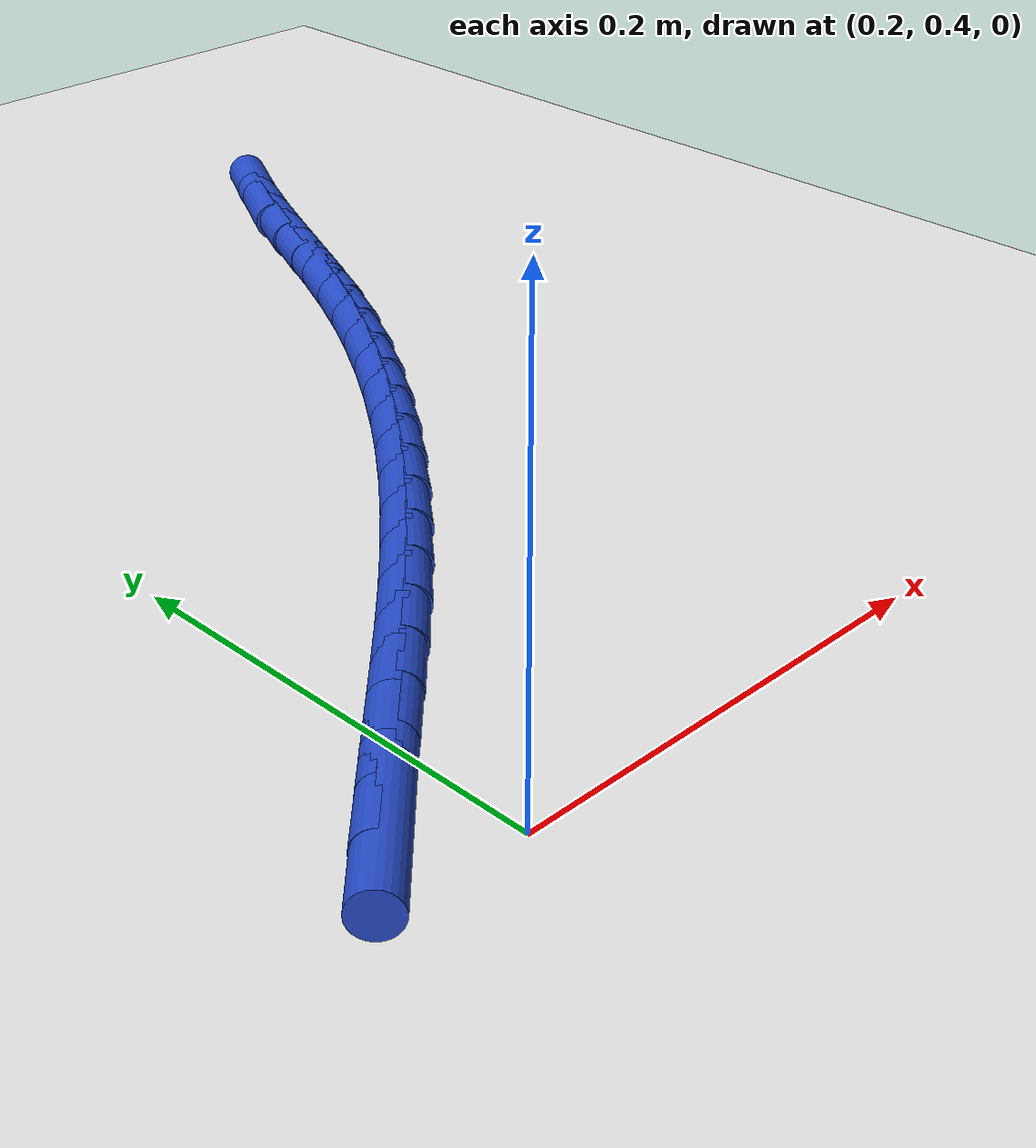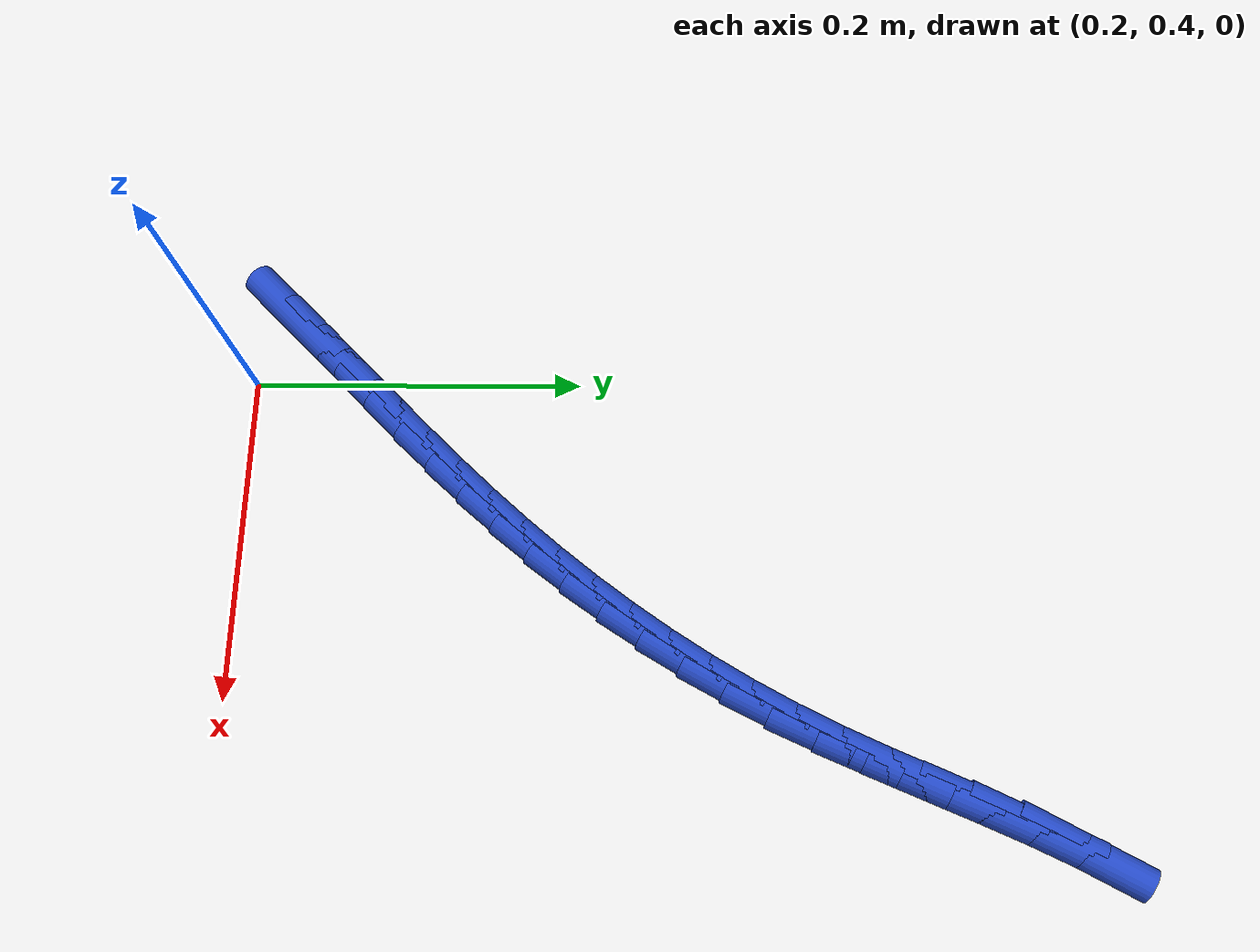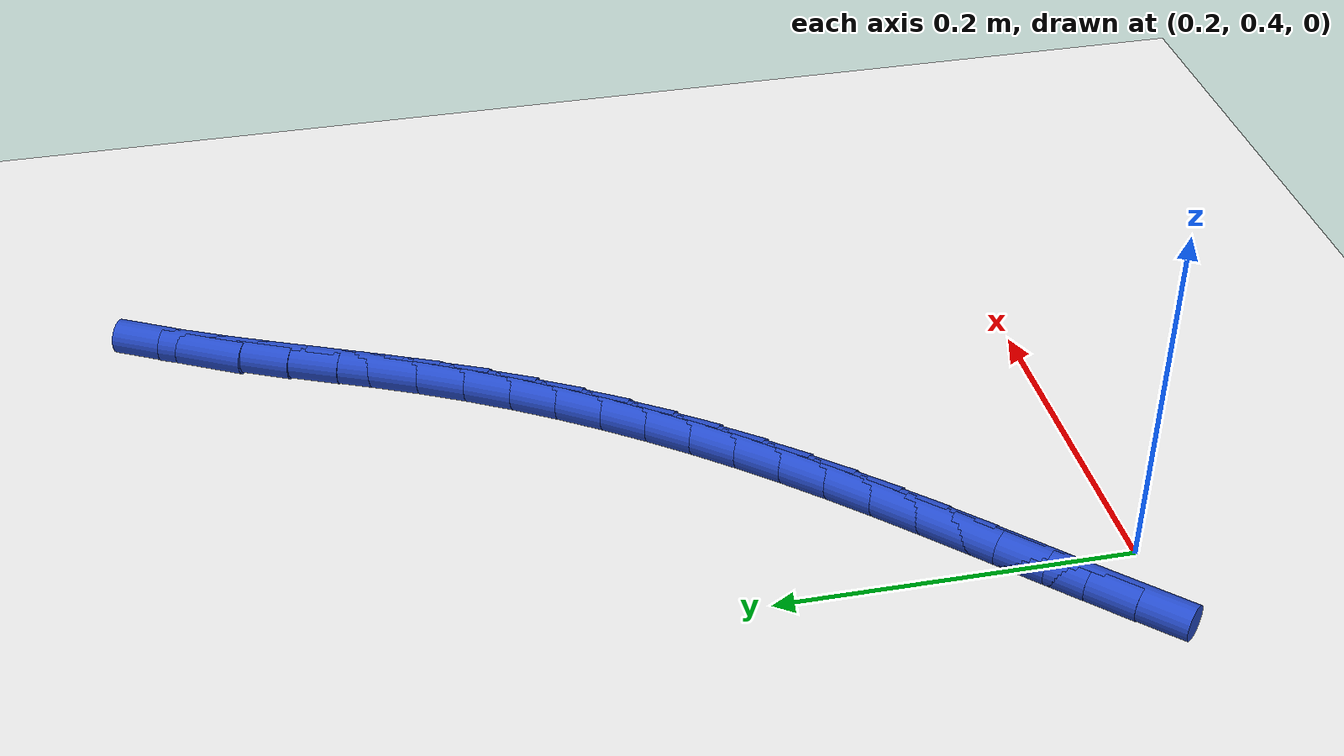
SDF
<sdf version="1.6">
 <world name="default">
  <model name="ground_plane">
   <static>1</static>
   <link name="link">
    <collision name="collision">
     <geometry><plane><normal>0 0 1</normal><size>100 100</size></plane></geometry>
     <surface><friction><ode><mu>100</mu><mu2>50</mu2></ode></friction></surface>
    </collision>
    <visual name="visual">
     <cast_shadows>0</cast_shadows>
     <geometry><plane><normal>0 0 1</normal><size>100 100</size></plane></geometry>
     <material>
      <script><uri>file://media/materials/scripts/gazebo.material</uri><name>Gazebo/WhiteGlow</name></script>
     </material>
    </visual>
   </link>
  </model>
  <model name="line">
   <link name="link_17">
    <pose>0.1601264760004584 0.42505557691806156 0.01 0 1.57 0.785718321556414</pose>
    <collision name="collision">
     <geometry><cylinder><radius>0.01</radius><length>0.08</length></cylinder></geometry>
    </collision>
    <visual name="visual">
     <material>
      <script><name>Gazebo/Blue</name><uri>file://media/materials/scripts/gazebo.material</uri></script>
     </material>
     <geometry><cylinder><radius>0.01</radius><length>0.08</length></cylinder></geometry>
    </visual>
   </link>
   <link name="link_18">
    <pose>0.18024281124892788 0.4451847971099076 0.01 0 1.57 0.776462563861803</pose>
    <collision name="collision">
     <geometry><cylinder><radius>0.01</radius><length>0.08</length></cylinder></geometry>
    </collision>
    <visual name="visual">
     <material>
      <script><name>Gazebo/Blue</name><uri>file://media/materials/scripts/gazebo.material</uri></script>
     </material>
     <geometry><cylinder><radius>0.01</radius><length>0.08</length></cylinder></geometry>
    </visual>
   </link>
   <link name="link_19">
    <pose>0.2005851403022812 0.46516679453999044 0.01 0 1.57 0.7743677885194766</pose>
    <collision name="collision">
     <geometry><cylinder><radius>0.01</radius><length>0.08</length></cylinder></geometry>
    </collision>
    <visual name="visual">
     <material>
      <script><name>Gazebo/Blue</name><uri>file://media/materials/scripts/gazebo.material</uri></script>
     </material>
     <geometry><cylinder><radius>0.01</radius><length>0.08</length></cylinder></geometry>
    </visual>
   </link>
   <link name="link_20">
    <pose>0.22095603560710458 0.4850931777285172 0.01 0 1.57 0.7794313464376725</pose>
    <collision name="collision">
     <geometry><cylinder><radius>0.01</radius><length>0.08</length></cylinder></geometry>
    </collision>
    <visual name="visual">
     <material>
      <script><name>Gazebo/Blue</name><uri>file://media/materials/scripts/gazebo.material</uri></script>
     </material>
     <geometry><cylinder><radius>0.01</radius><length>0.08</length></cylinder></geometry>
    </visual>
   </link>
   <link name="link_21">
    <pose>0.24115806960998415 0.5050555551956948 0.01 0 1.57 0.7917657792579809</pose>
    <collision name="collision">
     <geometry><cylinder><radius>0.01</radius><length>0.08</length></cylinder></geometry>
    </collision>
    <visual name="visual">
     <material>
      <script><name>Gazebo/Blue</name><uri>file://media/materials/scripts/gazebo.material</uri></script>
     </material>
     <geometry><cylinder><radius>0.01</radius><length>0.08</length></cylinder></geometry>
    </visual>
   </link>
   <link name="link_22">
    <pose>0.26099381475750594 0.5251455354617299 0.01 0 1.57 0.8114603091971061</pose>
    <collision name="collision">
     <geometry><cylinder><radius>0.01</radius><length>0.08</length></cylinder></geometry>
    </collision>
    <visual name="visual">
     <material>
      <script><name>Gazebo/Blue</name><uri>file://media/materials/scripts/gazebo.material</uri></script>
     </material>
     <geometry><cylinder><radius>0.01</radius><length>0.08</length></cylinder></geometry>
    </visual>
   </link>
   <link name="link_23">
    <pose>0.2802706182837798 0.5454542563455986 0.01 0 1.57 0.8361251301242908</pose>
    <collision name="collision">
     <geometry><cylinder><radius>0.01</radius><length>0.08</length></cylinder></geometry>
    </collision>
    <visual name="visual">
     <material>
      <script><name>Gazebo/Blue</name><uri>file://media/materials/scripts/gazebo.material</uri></script>
     </material>
     <geometry><cylinder><radius>0.01</radius><length>0.08</length></cylinder></geometry>
    </visual>
   </link>
   <link name="link_24">
    <pose>0.29888849046054056 0.5660637208920856 0.01 0 1.57 0.863359270496928</pose>
    <collision name="collision">
     <geometry><cylinder><radius>0.01</radius><length>0.08</length></cylinder></geometry>
    </collision>
    <visual name="visual">
     <material>
      <script><name>Gazebo/Blue</name><uri>file://media/materials/scripts/gazebo.material</uri></script>
     </material>
     <geometry><cylinder><radius>0.01</radius><length>0.08</length></cylinder></geometry>
    </visual>
   </link>
   <link name="link_25">
    <pose>0.3168314699730497 0.5870476485778667 0.01 0 1.57 0.8929415308446829</pose>
    <collision name="collision">
     <geometry><cylinder><radius>0.01</radius><length>0.08</length></cylinder></geometry>
    </collision>
    <visual name="visual">
     <material>
      <script><name>Gazebo/Blue</name><uri>file://media/materials/scripts/gazebo.material</uri></script>
     </material>
     <geometry><cylinder><radius>0.01</radius><length>0.08</length></cylinder></geometry>
    </visual>
   </link>
   <link name="link_26">
    <pose>0.33408663818808526 0.6084794589303689 0.01 0 1.57 0.9246881062299116</pose>
    <collision name="collision">
     <geometry><cylinder><radius>0.01</radius><length>0.08</length></cylinder></geometry>
    </collision>
    <visual name="visual">
     <material>
      <script><name>Gazebo/Blue</name><uri>file://media/materials/scripts/gazebo.material</uri></script>
     </material>
     <geometry><cylinder><radius>0.01</radius><length>0.08</length></cylinder></geometry>
    </visual>
   </link>
   <link name="link_27">
    <pose>0.3506410764724255 0.6304325714770184 0.01 0 1.57 0.9583666812969304</pose>
    <collision name="collision">
     <geometry><cylinder><radius>0.01</radius><length>0.08</length></cylinder></geometry>
    </collision>
    <visual name="visual">
     <material>
      <script><name>Gazebo/Blue</name><uri>file://media/materials/scripts/gazebo.material</uri></script>
     </material>
     <geometry><cylinder><radius>0.01</radius><length>0.08</length></cylinder></geometry>
    </visual>
   </link>
   <link name="link_28">
    <pose>0.36648186619284834 0.6529804057452422 0.01 0 1.57 0.9936996088033377</pose>
    <collision name="collision">
     <geometry><cylinder><radius>0.01</radius><length>0.08</length></cylinder></geometry>
    </collision>
    <visual name="visual">
     <material>
      <script><name>Gazebo/Blue</name><uri>file://media/materials/scripts/gazebo.material</uri></script>
     </material>
     <geometry><cylinder><radius>0.01</radius><length>0.08</length></cylinder></geometry>
    </visual>
   </link>
   <link name="link_29">
    <pose>0.38159608871613215 0.6761963812624668 0.01 0 1.57 1.030370230421064</pose>
    <collision name="collision">
     <geometry><cylinder><radius>0.01</radius><length>0.08</length></cylinder></geometry>
    </collision>
    <visual name="visual">
     <material>
      <script><name>Gazebo/Blue</name><uri>file://media/materials/scripts/gazebo.material</uri></script>
     </material>
     <geometry><cylinder><radius>0.01</radius><length>0.08</length></cylinder></geometry>
    </visual>
   </link>
   <link name="link_30">
    <pose>0.3959708254090549 0.7001539175561191 0.01 0 1.57 1.0680322082319915</pose>
    <collision name="collision">
     <geometry><cylinder><radius>0.01</radius><length>0.08</length></cylinder></geometry>
    </collision>
    <visual name="visual">
     <material>
      <script><name>Gazebo/Blue</name><uri>file://media/materials/scripts/gazebo.material</uri></script>
     </material>
     <geometry><cylinder><radius>0.01</radius><length>0.08</length></cylinder></geometry>
    </visual>
   </link>
   <link name="link_31">
    <pose>0.40959315763839477 0.7249264341536255 0.01 0 1.57 1.1063213138940085</pose>
    <collision name="collision">
     <geometry><cylinder><radius>0.01</radius><length>0.08</length></cylinder></geometry>
    </collision>
    <visual name="visual">
     <material>
      <script><name>Gazebo/Blue</name><uri>file://media/materials/scripts/gazebo.material</uri></script>
     </material>
     <geometry><cylinder><radius>0.01</radius><length>0.08</length></cylinder></geometry>
    </visual>
   </link>
   <link name="link_32">
    <pose>0.42245016677093 0.7505873505824128 0.01 0 1.57 1.1424172319542438</pose>
    <collision name="collision">
     <geometry><cylinder><radius>0.01</radius><length>0.08</length></cylinder></geometry>
    </collision>
    <visual name="visual">
     <material>
      <script><name>Gazebo/Blue</name><uri>file://media/materials/scripts/gazebo.material</uri></script>
     </material>
     <geometry><cylinder><radius>0.01</radius><length>0.08</length></cylinder></geometry>
    </visual>
   </link>
   <link name="link_33">
    <pose>0.43457579925530965 0.7771401806810869 0.01 0 1.57 1.164592994442675</pose>
    <collision name="collision">
     <geometry><cylinder><radius>0.01</radius><length>0.08</length></cylinder></geometry>
    </collision>
    <visual name="visual">
     <material>
      <script><name>Gazebo/Blue</name><uri>file://media/materials/scripts/gazebo.material</uri></script>
     </material>
     <geometry><cylinder><radius>0.01</radius><length>0.08</length></cylinder></geometry>
    </visual>
   </link>
   <link name="link_34">
    <pose>0.44623424936177686 0.8042449921248135 0.01 0 1.57 1.170135821235586</pose>
    <collision name="collision">
     <geometry><cylinder><radius>0.01</radius><length>0.08</length></cylinder></geometry>
    </collision>
    <visual name="visual">
     <material>
      <script><name>Gazebo/Blue</name><uri>file://media/materials/scripts/gazebo.material</uri></script>
     </material>
     <geometry><cylinder><radius>0.01</radius><length>0.08</length></cylinder></geometry>
    </visual>
   </link>
   <link name="link_35">
    <pose>0.4577603048082262 0.8314565527922518 0.01 0 1.57 1.1592761554816913</pose>
    <collision name="collision">
     <geometry><cylinder><radius>0.01</radius><length>0.08</length></cylinder></geometry>
    </collision>
    <visual name="visual">
     <material>
      <script><name>Gazebo/Blue</name><uri>file://media/materials/scripts/gazebo.material</uri></script>
     </material>
     <geometry><cylinder><radius>0.01</radius><length>0.08</length></cylinder></geometry>
    </visual>
   </link>
   <link name="link_36">
    <pose>0.4694887718142246 0.8583296029642821 0.01 0 1.57 1.131318556628179</pose>
    <collision name="collision">
     <geometry><cylinder><radius>0.01</radius><length>0.08</length></cylinder></geometry>
    </collision>
    <visual name="visual">
     <material>
      <script><name>Gazebo/Blue</name><uri>file://media/materials/scripts/gazebo.material</uri></script>
     </material>
     <geometry><cylinder><radius>0.01</radius><length>0.08</length></cylinder></geometry>
    </visual>
   </link>
   <link name="link_37">
    <pose>0.48175445659933874 0.8844188829217849 0.01 0 1.57 1.0846388731227439</pose>
    <collision name="collision">
     <geometry><cylinder><radius>0.01</radius><length>0.08</length></cylinder></geometry>
    </collision>
    <visual name="visual">
     <material>
      <script><name>Gazebo/Blue</name><uri>file://media/materials/scripts/gazebo.material</uri></script>
     </material>
     <geometry><cylinder><radius>0.01</radius><length>0.08</length></cylinder></geometry>
    </visual>
   </link>
  </model>
 </world>
</sdf>
